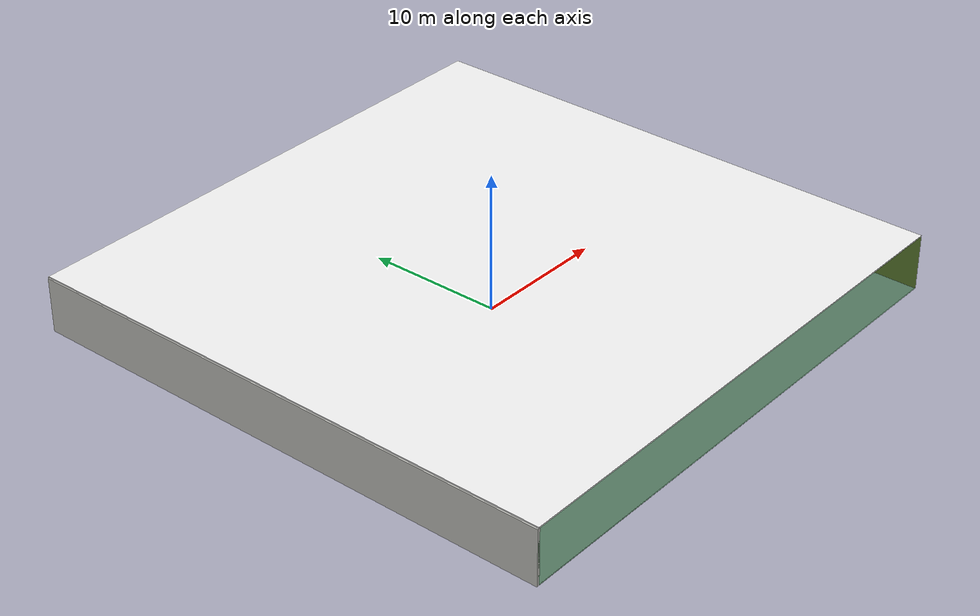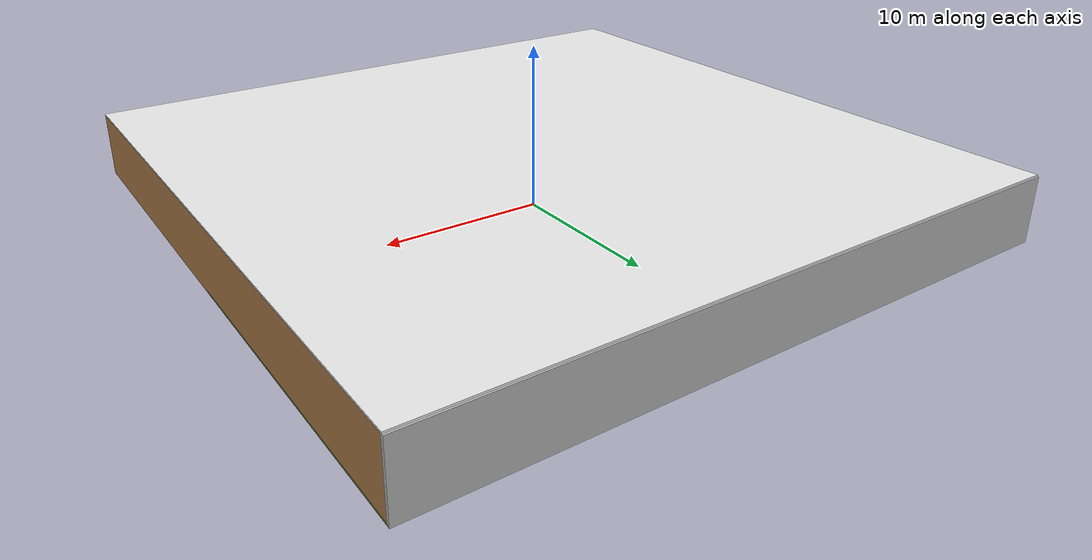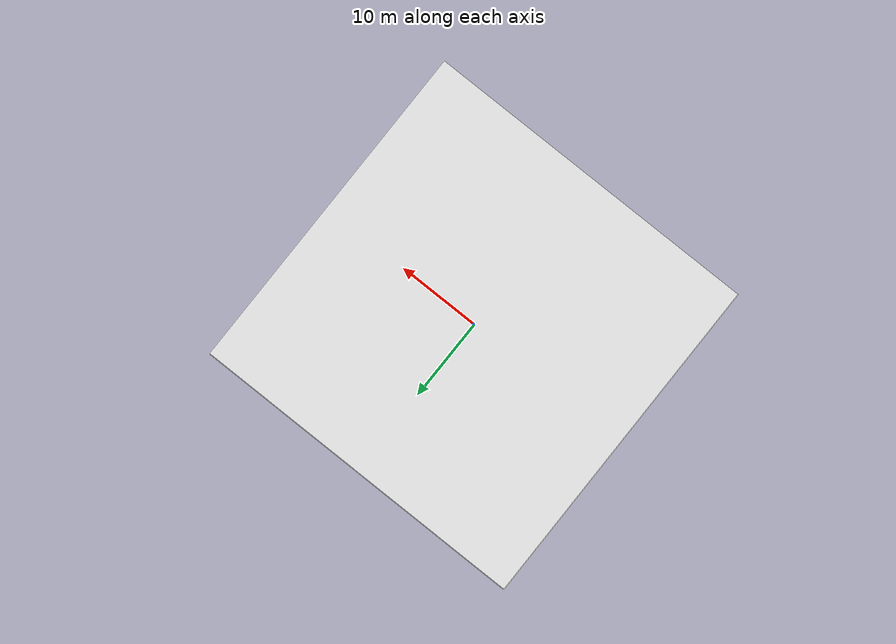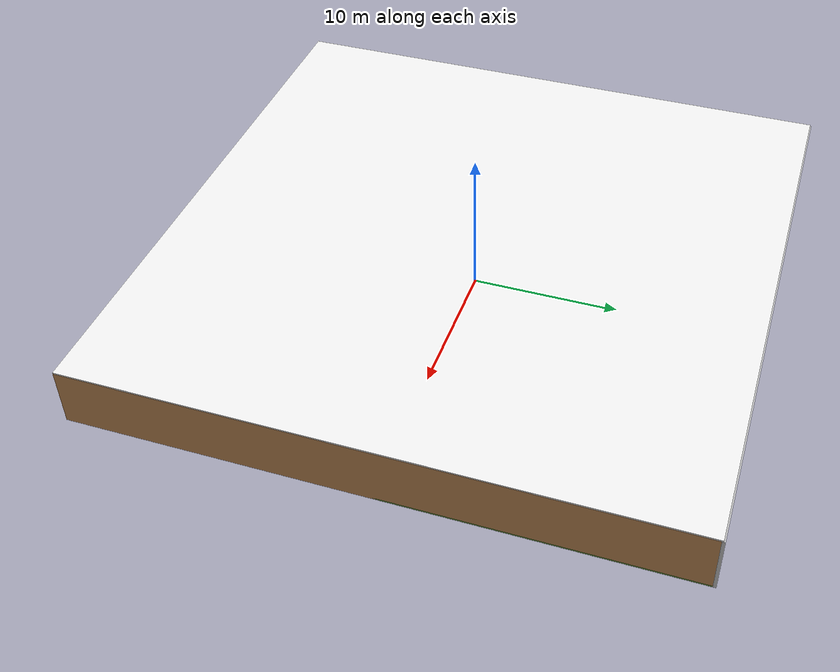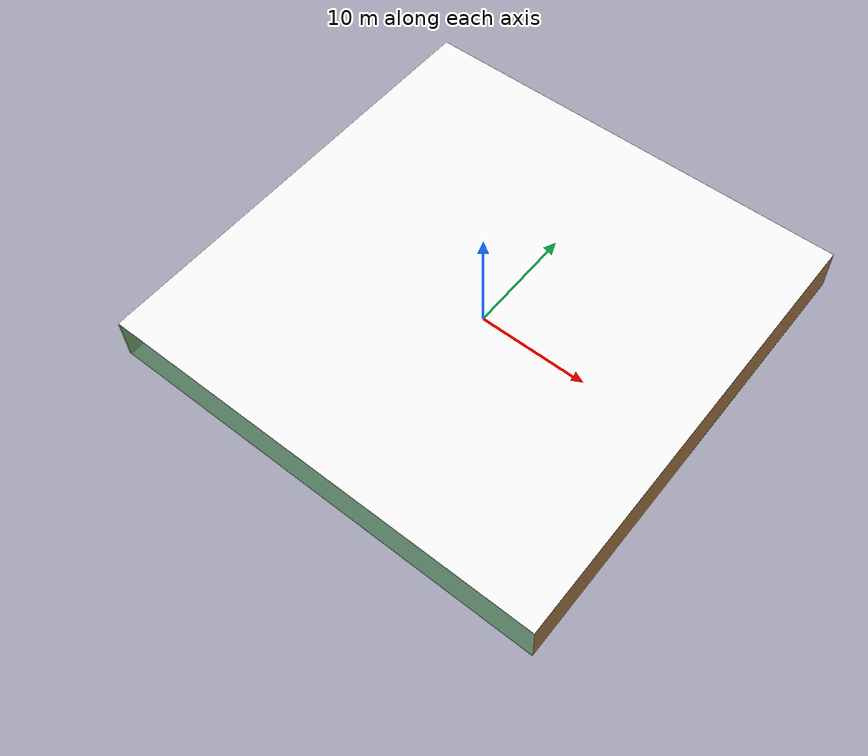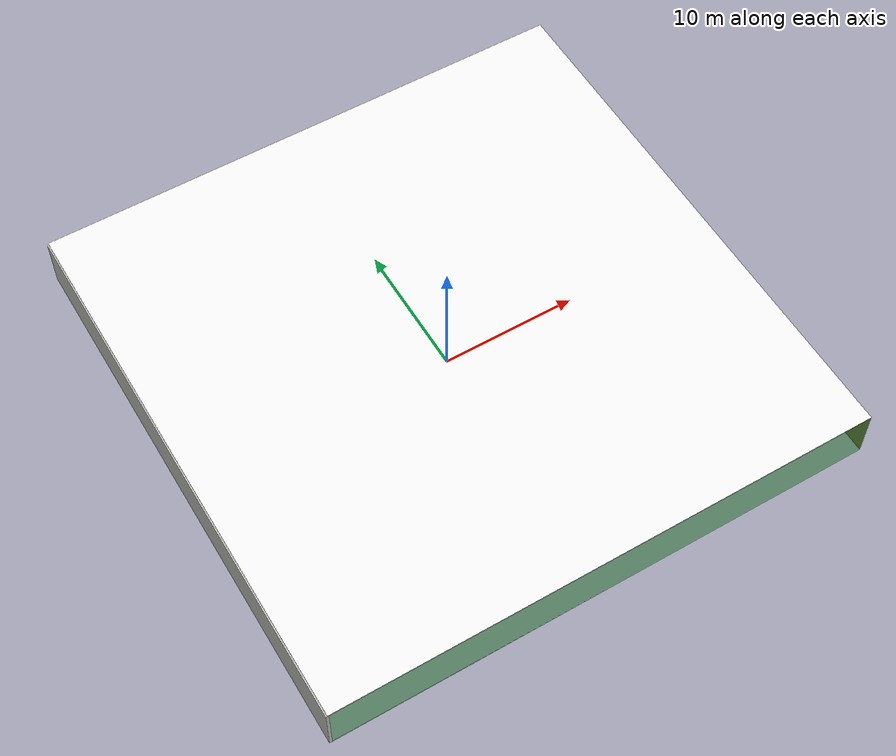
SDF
<sdf version="1.4">
 <world name="default">
  <physics type="ode">
   <max_step_size>0.001</max_step_size>
   <real_time_factor>1</real_time_factor>
   <real_time_update_rate>1000</real_time_update_rate>
   <gravity>0 0 -9.8</gravity>
  </physics>
  <scene><ambient>0.4 0.4 0.4 1</ambient><background>0.7 0.7 0.7 1</background><shadows>1</shadows></scene>
  <model name="Surrounding">
   <static>1</static>
   <link name="Ceiling">
    <collision name="Ceiling_Collision"><geometry><box><size>40 40 0.1</size></box></geometry></collision>
    <visual name="Ceiling_Visual">
     <geometry><box><size>40 40 0.1</size></box></geometry>
     <material>
      <script><uri>file://media/materials/scripts/gazebo.material</uri><name>Gazebo/White</name></script>
     </material>
    </visual>
    <pose>0 0 4.05 0 0 0</pose>
   </link>
   <link name="Wall_South">
    <collision name="Wall_South_Collision">
     <geometry><box><size>40 0 4</size></box></geometry>
     <pose>0 0 2 0 -0 0</pose>
    </collision>
    <visual name="Wall_South_Visual">
     <pose>0 0 2 0 -0 0</pose>
     <geometry><box><size>40 0 4</size></box></geometry>
     <material>
      <script><uri>file://media/materials/scripts/gazebo.material</uri><name>Gazebo/GreenTransparent</name></script>
     </material>
    </visual>
    <velocity_decay><linear>0</linear><angular>0</angular></velocity_decay>
    <pose>0 -20 0 0 -0 0</pose>
   </link>
   <link name="Wall_East">
    <collision name="Wall_21_Collision">
     <geometry><box><size>40 0 4</size></box></geometry>
     <pose>0 0 2 0 -0 0</pose>
    </collision>
    <visual name="Wall_21_Visual">
     <pose>0 0 2 0 -0 0</pose>
     <geometry><box><size>40 0 4</size></box></geometry>
     <material>
      <script><uri>file://media/materials/scripts/gazebo.material</uri><name>Gazebo/WoodPallet</name></script>
     </material>
    </visual>
    <velocity_decay><linear>0</linear><angular>0</angular></velocity_decay>
    <pose>20 0 0 0 -0 1.5708</pose>
   </link>
   <link name="Wall_North">
    <collision name="Wall_22_Collision">
     <geometry><box><size>40 0.2 4</size></box></geometry>
     <pose>0 0 2 0 -0 0</pose>
    </collision>
    <visual name="Wall_22_Visual">
     <pose>0 0 2 0 -0 0</pose>
     <geometry><box><size>40 0.2 4</size></box></geometry>
     <material>
      <script><uri>file://media/materials/scripts/gazebo.material</uri><name>Gazebo/LightOff</name></script>
     </material>
    </visual>
    <velocity_decay><linear>0</linear><angular>0</angular></velocity_decay>
    <pose>0 20 0 0 -0 0</pose>
   </link>
   <link name="Wall_West">
    <collision name="Wall_23_Collision">
     <geometry><box><size>40 0.2 4</size></box></geometry>
     <pose>0 0 2 0 -0 0</pose>
    </collision>
    <visual name="Wall_23_Visual">
     <pose>0 0 2 0 -0 0</pose>
     <geometry><box><size>40 0.2 4</size></box></geometry>
     <material>
      <script><uri>file://media/materials/scripts/gazebo.material</uri><name>Gazebo/CeilingTiled</name></script>
     </material>
    </visual>
    <velocity_decay><linear>0</linear><angular>0</angular></velocity_decay>
    <pose>-20 0 0 0 0 -1.5708</pose>
   </link>
   <link name="Ground_link">
    <collision name="collision">
     <pose>0 0 .05 0 -0 0</pose>
     <geometry><box><size>40 40 0.1</size></box></geometry>
    </collision>
    <visual name="visual">
     <pose>0 0 .05 0 -0 0</pose>
     <geometry><box><size>40 40 0.1</size></box></geometry>
     <material>
      <script><uri>file://media/materials/scripts/gazebo.material</uri><name>Gazebo/GreenTransparent</name></script>
     </material>
    </visual>
   </link>
   <static>1</static>
  </model>
  <spherical_coordinates>
   <surface_model>EARTH_WGS84</surface_model>
   <latitude_deg>0</latitude_deg>
   <longitude_deg>0</longitude_deg>
   <elevation>0</elevation>
   <heading_deg>0</heading_deg>
  </spherical_coordinates>
  <light name="lightball_0" type="diffuse">
   <diffuse>0.8 0.8 0.8 1</diffuse>
   <specular>0.2 0.2 0.2 1</specular>
   <attenuation>
    <range>100</range>
    <constant>0.7</constant>
    <linear>0.01</linear>
    <quadratic>0.001</quadratic>
   </attenuation>
   <direction>-0.5 0.1 -0.9</direction>
   <pose>-13.3136003514 -13.3856522955 0.741243352711 0 0 0</pose>
  </light>
  <light name="lightball_1" type="diffuse">
   <diffuse>0.8 0.8 0.8 1</diffuse>
   <specular>0.2 0.2 0.2 1</specular>
   <attenuation>
    <range>100</range>
    <constant>0.7</constant>
    <linear>0.01</linear>
    <quadratic>0.001</quadratic>
   </attenuation>
   <direction>-0.5 0.1 -0.9</direction>
   <pose>17.318786898 1.54281472776 2.80873295811 0 0 0</pose>
  </light>
  <light name="lightball_2" type="diffuse">
   <diffuse>0.8 0.8 0.8 1</diffuse>
   <specular>0.2 0.2 0.2 1</specular>
   <attenuation>
    <range>100</range>
    <constant>0.7</constant>
    <linear>0.01</linear>
    <quadratic>0.001</quadratic>
   </attenuation>
   <direction>-0.5 0.1 -0.9</direction>
   <pose>5.1318317361 -3.7531626771 1.60801940524 0 0 0</pose>
  </light>
  <light name="lightball_3" type="diffuse">
   <diffuse>0.8 0.8 0.8 1</diffuse>
   <specular>0.2 0.2 0.2 1</specular>
   <attenuation>
    <range>100</range>
    <constant>0.7</constant>
    <linear>0.01</linear>
    <quadratic>0.001</quadratic>
   </attenuation>
   <direction>-0.5 0.1 -0.9</direction>
   <pose>14.5938674867 15.6685827135 1.14785331273 0 0 0</pose>
  </light>
  <light name="lightball_4" type="diffuse">
   <diffuse>0.8 0.8 0.8 1</diffuse>
   <specular>0.2 0.2 0.2 1</specular>
   <attenuation>
    <range>100</range>
    <constant>0.7</constant>
    <linear>0.01</linear>
    <quadratic>0.001</quadratic>
   </attenuation>
   <direction>-0.5 0.1 -0.9</direction>
   <pose>11.8898511617 3.03130286433 3.81478297717 0 0 0</pose>
  </light>
  <light name="lightball_5" type="diffuse">
   <diffuse>0.8 0.8 0.8 1</diffuse>
   <specular>0.2 0.2 0.2 1</specular>
   <attenuation>
    <range>100</range>
    <constant>0.7</constant>
    <linear>0.01</linear>
    <quadratic>0.001</quadratic>
   </attenuation>
   <direction>-0.5 0.1 -0.9</direction>
   <pose>6.57113014987 13.893752834 1.71392650229 0 0 0</pose>
  </light>
  <light name="lightball_6" type="diffuse">
   <diffuse>0.8 0.8 0.8 1</diffuse>
   <specular>0.2 0.2 0.2 1</specular>
   <attenuation>
    <range>100</range>
    <constant>0.7</constant>
    <linear>0.01</linear>
    <quadratic>0.001</quadratic>
   </attenuation>
   <direction>-0.5 0.1 -0.9</direction>
   <pose>18.3121810381 -2.1539786823 0.593126163865 0 0 0</pose>
  </light>
  <light name="lightball_7" type="diffuse">
   <diffuse>0.8 0.8 0.8 1</diffuse>
   <specular>0.2 0.2 0.2 1</specular>
   <attenuation>
    <range>100</range>
    <constant>0.7</constant>
    <linear>0.01</linear>
    <quadratic>0.001</quadratic>
   </attenuation>
   <direction>-0.5 0.1 -0.9</direction>
   <pose>-11.6040655583 16.2014614906 1.56854194231 0 0 0</pose>
  </light>
  <light name="lightball_8" type="diffuse">
   <diffuse>0.8 0.8 0.8 1</diffuse>
   <specular>0.2 0.2 0.2 1</specular>
   <attenuation>
    <range>100</range>
    <constant>0.7</constant>
    <linear>0.01</linear>
    <quadratic>0.001</quadratic>
   </attenuation>
   <direction>-0.5 0.1 -0.9</direction>
   <pose>-4.37772594399 -3.03641150813 3.41208167764 0 0 0</pose>
  </light>
  <include>
   <uri>model://construction_cone</uri>
   <pose>-17.005970308 -7.37642210077 0 0 0 0.309905530368</pose>
  </include>
  <include>
   <uri>model://robocup_3Dsim_goal</uri>
   <pose>-13.4229777814 -11.9490324914 0 0 0 0.904043535439</pose>
  </include>
  <include><uri>model://table</uri><pose>-13.993898395 2.63235309131 0 0 0 0.154178313317</pose></include>
  <include>
   <uri>model://construction_cone</uri>
   <pose>-14.0832210088 6.18945005477 0 0 0 2.27915525233</pose>
  </include>
  <include><uri>model://cabinet</uri><pose>-12.6537033368 9.9697136678 0 0 0 2.2350855712</pose></include>
  <include><uri>model://cabinet</uri><pose>-11.7837423994 14.9357880478 0 0 0 1.40851122387</pose></include>
  <include>
   <uri>model://robocup_3Dsim_goal</uri>
   <pose>-8.50308922743 15.2935629945 0 0 0 2.58259772714</pose>
  </include>
  <include><uri>model://cabinet</uri><pose>-7.61852017168 18.0013964518 0 0 0 0.878679623702</pose></include>
  <include>
   <uri>model://robocup_3Dsim_goal</uri>
   <pose>-1.66719631758 1.43755626997 0 0 0 0.878821810469</pose>
  </include>
  <include><uri>model://cabinet</uri><pose>-3.55622435555 3.71228541998 0 0 0 1.21014621188</pose></include>
  <include>
   <uri>model://textured_shapes</uri>
   <pose>-3.6823292016 9.94752212224 0 0 0 1.47212443977</pose>
  </include>
  <include>
   <uri>model://construction_cone</uri>
   <pose>-2.58771958878 12.5804352389 0 0 0 2.53941483836</pose>
  </include>
  <include>
   <uri>model://construction_cone</uri>
   <pose>0.0760873483216 2.74113404715 0 0 0 1.705670681</pose>
  </include>
  <include><uri>model://table</uri><pose>0.158582719626 13.1306360234 0 0 0 2.36163075765</pose></include>
  <include><uri>model://cabinet</uri><pose>4.05320600529 0.462357712346 0 0 0 1.47758928797</pose></include>
  <include><uri>model://table</uri><pose>3.15825776606 11.8715851385 0 0 0 2.42926735104</pose></include>
  <include>
   <uri>model://construction_cone</uri>
   <pose>3.9516762661 15.2609374912 0 0 0 0.280219885435</pose>
  </include>
  <include><uri>model://cabinet</uri><pose>3.15675977993 18.351824817 0 0 0 2.99025067933</pose></include>
  <include>
   <uri>model://construction_cone</uri>
   <pose>6.83936067201 -12.44310444 0 0 0 2.79736646784</pose>
  </include>
  <include><uri>model://cabinet</uri><pose>7.60236316959 9.21280027898 0 0 0 0.918011466334</pose></include>
  <include>
   <uri>model://textured_shapes</uri>
   <pose>6.62712376489 16.5233929783 0 0 0 2.84825332342</pose>
  </include>
  <include><uri>model://cabinet</uri><pose>6.69613840525 18.4752020349 0 0 0 2.62024290823</pose></include>
  <include><uri>model://table</uri><pose>9.33151663052 2.94336531291 0 0 0 2.27231965888</pose></include>
  <include>
   <uri>model://textured_shapes</uri>
   <pose>12.1275817055 6.79333448978 0 0 0 0.795777789648</pose>
  </include>
  <include><uri>model://table</uri><pose>11.6814698229 9.57997040308 0 0 0 0.265513786832</pose></include>
  <include>
   <uri>model://robocup_3Dsim_goal</uri>
   <pose>15.1807471038 8.65893751462 0 0 0 1.27674243935</pose>
  </include>
  <include><uri>model://cabinet</uri><pose>15.5769833053 19.5591137492 0 0 0 2.47670281034</pose></include>
  <include><uri>model://cabinet</uri><pose>19.4565582225 -10.7633326417 0 0 0 1.58963134851</pose></include>
  <include><uri>model://cabinet</uri><pose>18.8586782938 19.1107423328 0 0 0 1.70078947799</pose></include>
 </world>
</sdf>

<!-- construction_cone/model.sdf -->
<sdf version="1.5">
  <model name="Construction Cone">
    <link name="link">
      <collision name="collision">
        <geometry>
          <mesh>
            <scale>10 10 10</scale>
            <uri>file://isr-testbed/construction_cone/meshes/construction_cone.dae</uri>
          </mesh>
        </geometry>
      </collision>
      <visual name="visual">
        <geometry>
          <mesh>
            <scale>10 10 10</scale>
            <uri>file://isr-testbed/construction_cone/meshes/construction_cone.dae</uri>
          </mesh>
        </geometry>
      </visual>
    </link>
  </model>
</sdf>

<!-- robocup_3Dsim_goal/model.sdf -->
<sdf version="1.5">
  <model name="robocup_3d_goal">
    <static>true</static>
    <link name="left_post">
      <pose>0 1.05 0.45 0 0 0</pose>
      <collision name="collision">
        <geometry>
          <cylinder>
            <radius>0.05</radius>
            <length>0.9</length>
          </cylinder>
        </geometry>
      </collision>
      <visual name="visual">
        <geometry>
          <cylinder>
            <radius>0.05</radius>
            <length>0.9</length>
          </cylinder>
        </geometry>
        <material>
          <script>
            <uri>file://media/materials/scripts/gazebo.material</uri>
            <name>Gazebo/ZincYellow</name>
          </script>
        </material>
      </visual>
    </link>
    <link name="left_support_horiz_lower">
      <pose>0.30 1.05 0.01 0 0 0</pose>
      <collision name="collision">
        <geometry>
          <box>
            <size>0.50 0.02 0.02</size>
          </box>
        </geometry>
      </collision>
      <visual name="visual">
        <geometry>
          <box>
            <size>0.50 0.02 0.02</size>
          </box>
        </geometry>
        <material>
          <script>
            <uri>file://media/materials/scripts/gazebo.material</uri>
            <name>Gazebo/White</name>
          </script>
        </material>
      </visual>
    </link>
    <link name="left_support_horiz_upper">
      <pose>0.30 1.05 0.79 0 0 0</pose>
      <collision name="collision">
        <geometry>
          <box>
            <size>0.50 0.02 0.02</size>
          </box>
        </geometry>
      </collision>
      <visual name="visual">
        <geometry>
          <box>
            <size>0.50 0.02 0.02</size>
          </box>
        </geometry>
        <material>
          <script>
            <uri>file://media/materials/scripts/gazebo.material</uri>
            <name>Gazebo/White</name>
          </script>
        </material>
      </visual>
    </link>
    <link name="left_support_vertical">
      <pose>0.56 1.05 0.4 0 1.5708 0</pose>
      <collision name="collision">
        <geometry>
          <box>
            <size>0.80 0.02 0.02</size>
          </box>
        </geometry>
      </collision>
      <visual name="visual">
        <geometry>
          <box>
            <size>0.80 0.02 0.02</size>
          </box>
        </geometry>
        <material>
          <script>
            <uri>file://media/materials/scripts/gazebo.material</uri>
            <name>Gazebo/White</name>
          </script>
        </material>
      </visual>
    </link>
    <link name="right_support_horiz_lower">
      <pose>0.30 -1.05 0.01 0 0 0</pose>
      <collision name="collision">
        <geometry>
          <box>
            <size>0.50 0.02 0.02</size>
          </box>
        </geometry>
      </collision>
      <visual name="visual">
        <geometry>
          <box>
            <size>0.50 0.02 0.02</size>
          </box>
        </geometry>
        <material>
          <script>
            <uri>file://media/materials/scripts/gazebo.material</uri>
            <name>Gazebo/White</name>
          </script>
        </material>
      </visual>
    </link>
    <link name="right_support_horiz_upper">
      <pose>0.30 -1.05 0.79 0 0 0</pose>
      <collision name="collision">
        <geometry>
          <box>
            <size>0.50 0.02 0.02</size>
          </box>
        </geometry>
      </collision>
      <visual name="visual">
        <geometry>
          <box>
            <size>0.50 0.02 0.02</size>
          </box>
        </geometry>
        <material>
          <script>
            <uri>file://media/materials/scripts/gazebo.material</uri>
            <name>Gazebo/White</name>
          </script>
        </material>
      </visual>
    </link>
    <link name="right_support_vertical">
      <pose>0.56 -1.05 0.4 0 1.5708 0</pose>
      <collision name="collision">
        <geometry>
          <box>
            <size>0.80 0.02 0.02</size>
          </box>
        </geometry>
      </collision>
      <visual name="visual">
        <geometry>
          <box>
            <size>0.80 0.02 0.02</size>
          </box>
        </geometry>
        <material>
          <script>
            <uri>file://media/materials/scripts/gazebo.material</uri>
            <name>Gazebo/White</name>
          </script>
        </material>
      </visual>
    </link>
    <link name="center_support_horiz_lower">
      <pose>0.56 0 0.01 0 1.5708 0</pose>
      <collision name="collision">
        <geometry>
          <box>
            <size>0.02 2.08 0.02</size>
          </box>
        </geometry>
      </collision>
      <visual name="visual">
        <geometry>
          <box>
            <size>0.02 2.08 0.02</size>
          </box>
        </geometry>
        <material>
          <script>
            <uri>file://media/materials/scripts/gazebo.material</uri>
            <name>Gazebo/White</name>
          </script>
        </material>
      </visual>
    </link>
    <link name="center_support_horiz_upper">
      <pose>0.56 0 0.79 0 1.5708 0</pose>
      <collision name="collision">
        <geometry>
          <box>
            <size>0.02 2.08 0.02</size>
          </box>
        </geometry>
      </collision>
      <visual name="visual">
        <geometry>
          <box>
            <size>0.02 2.08 0.02</size>
          </box>
        </geometry>
        <material>
          <script>
            <uri>file://media/materials/scripts/gazebo.material</uri>
            <name>Gazebo/White</name>
          </script>
        </material>
      </visual>
    </link>
    <link name="right_post">
      <pose>0 -1.05 0.45 0 0 0</pose>
      <collision name="collision">
        <geometry>
          <cylinder>
            <radius>0.05</radius>
            <length>0.9</length>
          </cylinder>
        </geometry>
      </collision>
      <visual name="visual">
        <geometry>
          <cylinder>
            <radius>0.05</radius>
            <length>0.9</length>
          </cylinder>
        </geometry>
        <material>
          <script>
            <uri>file://media/materials/scripts/gazebo.material</uri>
            <name>Gazebo/ZincYellow</name>
          </script>
        </material>
      </visual>
    </link>
    <link name="crossbar">
      <pose>0 0 0.85 1.57 1.57 0</pose>
      <collision name="collision">
        <geometry>
          <cylinder>
            <radius>0.05</radius>
            <length>2.0</length>
          </cylinder>
        </geometry>
      </collision>
      <visual name="visual">
        <geometry>
          <cylinder>
            <radius>0.05</radius>
            <length>2.0</length>
          </cylinder>
        </geometry>
        <material>
          <script>
            <uri>file://media/materials/scripts/gazebo.material</uri>
            <name>Gazebo/ZincYellow</name>
          </script>
        </material>
      </visual>
    </link>
    <link name="center_net">
      <pose>0.56 0 0.40 0 0 0</pose>
      <collision name="collision">
        <geometry>
          <box>
            <size>0.01 2.1 0.80</size>
          </box>
        </geometry>
      </collision>
      <visual name="visual">
        <geometry>
          <box>
            <size>0.01 2.1 0.80</size>
          </box>
        </geometry>
        <material>
          <script>
            <uri>model://../model_source/models/robocup09_spl_field/materials/scripts/</uri>
            <uri>model://../model_source/models/robocup09_spl_field/materials/textures/</uri>
            <name>RoboCup/Net</name>
          </script>
        </material>
      </visual>
    </link>
    <link name="left_net">
      <pose>0.30 1.05 0.40 0 0 0</pose>
      <collision name="collision">
        <geometry>
          <box>
            <size>0.50 0.01 0.76</size>
          </box>
        </geometry>
      </collision>
      <visual name="visual">
        <geometry>
          <box>
            <size>0.50 0.01 0.76</size>
          </box>
        </geometry>
        <material>
          <script>
            <uri>model://../model_source/models/robocup09_spl_field/materials/scripts/</uri>
            <uri>model://../model_source/models/robocup09_spl_field/materials/textures/</uri>
            <name>RoboCup/Net</name>
          </script>
        </material>
      </visual>
    </link>
    <link name="right_net">
      <pose>0.30 -1.05 0.40 0 0 0</pose>
      <collision name="collision">
        <geometry>
          <box>
            <size>0.50 0.01 0.76</size>
          </box>
        </geometry>
      </collision>
      <visual name="visual">
        <geometry>
          <box>
            <size>0.50 0.01 0.76</size>
          </box>
        </geometry>
        <material>
          <script>
            <uri>model://../model_source/models/robocup09_spl_field/materials/scripts/</uri>
            <uri>model://../model_source/models/robocup09_spl_field/materials/textures/</uri>
            <name>RoboCup/Net</name>
          </script>
        </material>
      </visual>
    </link>
  </model>
</sdf>

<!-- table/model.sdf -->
<sdf version="1.5">
  <model name="table">
    <static>true</static>
    <link name="link">
      <collision name="surface">
        <pose>0 0 1.0 0 0 0</pose>
        <geometry>
          <box>
            <size>1.5 0.8 0.03</size>
          </box>
        </geometry>
        <surface>
          <friction>
            <ode>
              <mu>0.6</mu>
              <mu2>0.6</mu2>
            </ode>
          </friction>
        </surface>
      </collision>
      <visual name="visual1">
        <pose>0 0 1.0 0 0 0</pose>
        <geometry>
          <box>
            <size>1.5 0.8 0.03</size>
          </box>
        </geometry>
        <material>
          <script>
            <uri>model://media/materials/scripts/gazebo.material</uri>
            <name>Gazebo/Wood</name>
          </script>
        </material>
      </visual>
      <collision name="front_left_leg">
        <pose>0.68 0.38 0.5 0 0 0</pose>
        <geometry>
          <cylinder>
            <radius>0.02</radius>
            <length>1.0</length>
          </cylinder>
        </geometry>
      </collision>
      <visual name="front_left_leg">
        <pose>0.68 0.38 0.5 0 0 0</pose>
        <geometry>
          <cylinder>
            <radius>0.02</radius>
            <length>1.0</length>
          </cylinder>
        </geometry>
        <material>
          <script>
            <uri>model://media/materials/scripts/gazebo.material</uri>
            <name>Gazebo/Grey</name>
          </script>
        </material>
      </visual>
      <collision name="front_right_leg">
        <pose>0.68 -0.38 0.5 0 0 0</pose>
        <geometry>
          <cylinder>
            <radius>0.02</radius>
            <length>1.0</length>
          </cylinder>
        </geometry>
      </collision>
      <visual name="front_right_leg">
        <pose>0.68 -0.38 0.5 0 0 0</pose>
        <geometry>
          <cylinder>
            <radius>0.02</radius>
            <length>1.0</length>
          </cylinder>
        </geometry>
        <material>
          <script>
            <uri>model://media/materials/scripts/gazebo.material</uri>
            <name>Gazebo/Grey</name>
          </script>
        </material>
      </visual>
      <collision name="back_right_leg">
        <pose>-0.68 -0.38 0.5 0 0 0</pose>
        <geometry>
          <cylinder>
            <radius>0.02</radius>
            <length>1.0</length>
          </cylinder>
        </geometry>
      </collision>
      <visual name="back_right_leg">
        <pose>-0.68 -0.38 0.5 0 0 0</pose>
        <geometry>
          <cylinder>
            <radius>0.02</radius>
            <length>1.0</length>
          </cylinder>
        </geometry>
        <material>
          <script>
            <uri>model://media/materials/scripts/gazebo.material</uri>
            <name>Gazebo/Grey</name>
          </script>
        </material>
      </visual>
      <collision name="back_left_leg">
        <pose>-0.68 0.38 0.5 0 0 0</pose>
        <geometry>
          <cylinder>
            <radius>0.02</radius>
            <length>1.0</length>
          </cylinder>
        </geometry>
      </collision>
      <visual name="back_left_leg">
        <pose>-0.68 0.38 0.5 0 0 0</pose>
        <geometry>
          <cylinder>
            <radius>0.02</radius>
            <length>1.0</length>
          </cylinder>
        </geometry>
        <material>
          <script>
            <uri>model://media/materials/scripts/gazebo.material</uri>
            <name>Gazebo/Grey</name>
          </script>
        </material>
      </visual>
    </link>
  </model>
</sdf>

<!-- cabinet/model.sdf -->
<sdf version="1.5">
  <model name="cabinet">
    <static>true</static>
    <link name="cabinet_bottom_plate">
      <inertial>
        <pose>0 0 -1 0 0 0</pose>
        <inertia>
          <ixx>2.050000</ixx>
          <ixy>0</ixy>
          <ixz>0</ixz>
          <iyy>2.050000</iyy>
          <iyz>0</iyz>
          <izz>2.050000</izz>
        </inertia>
        <mass>25.000000</mass>
      </inertial>
      <collision name="cabinet_bottom_plate_geom">
        <pose>0 0 0.010000 0 0 0</pose>
        <geometry>
          <box>
            <size>0.450000 0.450000 0.020000</size>
          </box>
        </geometry>
      </collision>
      <visual name="cabinet_bottom_plate_geom_visual">
        <pose>0 0 0.010000 0 0 0</pose>
        <geometry>
          <box>
            <size>0.450000 0.450000 0.020000</size>
          </box>
        </geometry>
        <material>
          <script>
            <uri>model://media/materials/scripts/gazebo.material</uri>
            <name>Gazebo/Wood</name>
          </script>
        </material>
      </visual>
      <collision name="cabinet_bottom_plate_geom_cabinet_back_plate">
        <pose>0.235000 0 0.510000 0 0 0</pose>
        <geometry>
          <box>
            <size>0.020000 0.450000 1.020000</size>
          </box>
        </geometry>
      </collision>
      <visual name="cabinet_bottom_plate_geom_cabinet_back_plate_visual">
        <pose>0.235000 0 0.510000 0 0 0</pose>
        <geometry>
          <box>
            <size>0.020000 0.450000 1.020000</size>
          </box>
        </geometry>
        <material>
          <script>
            <uri>model://media/materials/scripts/gazebo.material</uri>
            <name>Gazebo/Wood</name>
          </script>
        </material>
      </visual>
      <collision name="cabinet_bottom_plate_geom_cabinet_left_plate">
        <pose>0 0.235000 0.510000 0 0 0</pose>
        <geometry>
          <box>
            <size>0.450000 0.020000 1.020000</size>
          </box>
        </geometry>
      </collision>
      <visual name="cabinet_bottom_plate_geom_cabinet_left_plate_visual">
        <pose>0 0.235000 0.510000 0 0 0</pose>
        <geometry>
          <box>
            <size>0.450000 0.020000 1.020000</size>
          </box>
        </geometry>
        <material>
          <script>
            <uri>model://media/materials/scripts/gazebo.material</uri>
            <name>Gazebo/Wood</name>
          </script>
        </material>
      </visual>
      <collision name="cabinet_bottom_plate_geom_cabinet_middle_plate">
        <pose>0 0 0.510000 0 0 0</pose>
        <geometry>
          <box>
            <size>0.450000 0.450000 0.020000</size>
          </box>
        </geometry>
      </collision>
      <visual name="cabinet_bottom_plate_geom_cabinet_middle_plate_visual">
        <pose>0 0 0.510000 0 0 0</pose>
        <geometry>
          <box>
            <size>0.450000 0.450000 0.020000</size>
          </box>
        </geometry>
        <material>
          <script>
            <uri>model://media/materials/scripts/gazebo.material</uri>
            <name>Gazebo/Wood</name>
          </script>
        </material>
      </visual>
      <collision name="cabinet_bottom_plate_geom_cabinet_right_plate">
        <pose>0 -0.235000 0.510000 0 0 0</pose>
        <geometry>
          <box>
            <size>0.450000 0.020000 1.020000</size>
          </box>
        </geometry>
      </collision>
      <visual name="cabinet_bottom_plate_geom_cabinet_right_plate_visual">
        <pose>0 -0.235000 0.510000 0 0 0</pose>
        <geometry>
          <box>
            <size>0.450000 0.020000 1.020000</size>
          </box>
        </geometry>
        <material>
          <script>
            <uri>model://media/materials/scripts/gazebo.material</uri>
            <name>Gazebo/Wood</name>
          </script>
        </material>
      </visual>
      <collision name="cabinet_bottom_plate_geom_cabinet_top_plate">
        <pose>0 0 1.010000 0 0 0</pose>
        <geometry>
          <box>
            <size>0.450000 0.450000 0.020000</size>
          </box>
        </geometry>
      </collision>
      <visual name="cabinet_bottom_plate_geom_cabinet_top_plate_visual">
        <pose>0 0 1.010000 0 0 0</pose>
        <geometry>
          <box>
            <size>0.450000 0.450000 0.020000</size>
          </box>
        </geometry>
        <material>
          <script>
            <uri>model://media/materials/scripts/gazebo.material</uri>
            <name>Gazebo/Wood</name>
          </script>
        </material>
      </visual>
    </link>
  </model>
</sdf>

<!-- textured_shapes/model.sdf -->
<sdf version="1.6">
  <model name="textured_shapes">
    <pose>0 0 0.5 0 0 0</pose>
    <link name="box">
      <pose>0 -1.5 0 0 0 0</pose>
      <collision name="collision">
        <geometry>
          <box>
            <size>1 1 1</size>
          </box>
        </geometry>
      </collision>
      <visual name="visual">
        <geometry>
          <box>
            <size>1 1 1</size>
          </box>
        </geometry>
        <material>
          <script>
            <uri>model://../model_source/models/textured_shapes/materials/scripts</uri>
            <uri>model://../model_source/models/textured_shapes/materials/textures</uri>
            <name>TexturedShape/Squares</name>
          </script>
        </material>
      </visual>
    </link>
    <link name="sphere">
      <collision name="collision">
        <geometry>
          <sphere>
            <radius>0.5</radius>
          </sphere>
        </geometry>
      </collision>
      <visual name="visual">
        <geometry>
          <sphere>
            <radius>0.5</radius>
          </sphere>
        </geometry>
        <material>
          <script>
            <uri>model://../model_source/models/textured_shapes/materials/scripts</uri>
            <uri>model://../model_source/models/textured_shapes/materials/textures</uri>
            <name>TexturedShape/Squares</name>
          </script>
        </material>
      </visual>
    </link>
    <link name="cylinder">
      <pose>0 1.5 0 0 0 0</pose>
      <collision name="collision">
        <geometry>
          <cylinder>
            <radius>0.5</radius>
            <length>1</length>
          </cylinder>
        </geometry>
      </collision>
      <visual name="visual">
        <geometry>
          <cylinder>
            <radius>0.5</radius>
            <length>1</length>
          </cylinder>
        </geometry>
        <material>
          <script>
            <uri>model://../model_source/models/textured_shapes/materials/scripts</uri>
            <uri>model://../model_source/models/textured_shapes/materials/textures</uri>
            <name>TexturedShape/Squares</name>
          </script>
        </material>
      </visual>
    </link>
  </model>
</sdf>
